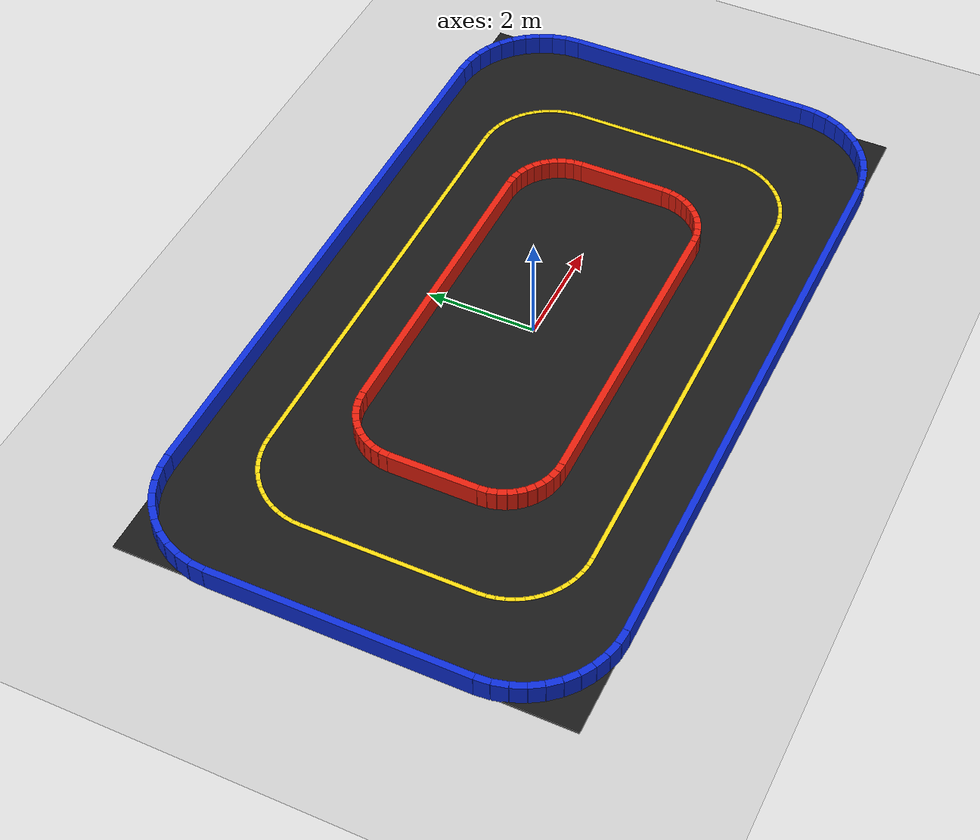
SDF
<sdf version="1.9">
 <world name="compact_race_track">
  <include><uri>model://ground_plane</uri></include>
  <include><uri>model://sun</uri></include>
  <model name="race_track">
   <static>true</static>
   <link name="track_floor">
    <collision name="collision"><geometry><box><size>14.0 8.0 0.05</size></box></geometry></collision>
    <visual name="visual">
     <geometry><box><size>14.0 8.0 0.05</size></box></geometry>
     <material><ambient>0.10 0.10 0.10 1</ambient><diffuse>0.10 0.10 0.10 1</diffuse></material>
    </visual>
   </link>
   <link name="outer_wall_000">
    <pose>0.0000 -4.0000 0.200 0 0 0.000000</pose>
    <collision name="collision"><geometry><box><size>10.6000 0.120 0.400</size></box></geometry></collision>
    <visual name="visual">
     <geometry><box><size>10.6000 0.120 0.400</size></box></geometry>
     <material><ambient>0.05 0.18 0.85 1</ambient><diffuse>0.05 0.18 0.85 1</diffuse></material>
    </visual>
   </link>
   <link name="outer_wall_001">
    <pose>5.4330 -3.9895 0.200 0 0 0.078540</pose>
    <collision name="collision"><geometry><box><size>0.2668 0.120 0.400</size></box></geometry></collision>
    <visual name="visual">
     <geometry><box><size>0.2668 0.120 0.400</size></box></geometry>
     <material><ambient>0.05 0.18 0.85 1</ambient><diffuse>0.05 0.18 0.85 1</diffuse></material>
    </visual>
   </link>
   <link name="outer_wall_002">
    <pose>5.6956 -3.9479 0.200 0 0 0.235619</pose>
    <collision name="collision"><geometry><box><size>0.2668 0.120 0.400</size></box></geometry></collision>
    <visual name="visual">
     <geometry><box><size>0.2668 0.120 0.400</size></box></geometry>
     <material><ambient>0.05 0.18 0.85 1</ambient><diffuse>0.05 0.18 0.85 1</diffuse></material>
    </visual>
   </link>
   <link name="outer_wall_003">
    <pose>5.9486 -3.8658 0.200 0 0 0.392699</pose>
    <collision name="collision"><geometry><box><size>0.2668 0.120 0.400</size></box></geometry></collision>
    <visual name="visual">
     <geometry><box><size>0.2668 0.120 0.400</size></box></geometry>
     <material><ambient>0.05 0.18 0.85 1</ambient><diffuse>0.05 0.18 0.85 1</diffuse></material>
    </visual>
   </link>
   <link name="outer_wall_004">
    <pose>6.1855 -3.7450 0.200 0 0 0.549779</pose>
    <collision name="collision"><geometry><box><size>0.2668 0.120 0.400</size></box></geometry></collision>
    <visual name="visual">
     <geometry><box><size>0.2668 0.120 0.400</size></box></geometry>
     <material><ambient>0.05 0.18 0.85 1</ambient><diffuse>0.05 0.18 0.85 1</diffuse></material>
    </visual>
   </link>
   <link name="outer_wall_005">
    <pose>6.4007 -3.5887 0.200 0 0 0.706858</pose>
    <collision name="collision"><geometry><box><size>0.2668 0.120 0.400</size></box></geometry></collision>
    <visual name="visual">
     <geometry><box><size>0.2668 0.120 0.400</size></box></geometry>
     <material><ambient>0.05 0.18 0.85 1</ambient><diffuse>0.05 0.18 0.85 1</diffuse></material>
    </visual>
   </link>
   <link name="outer_wall_006">
    <pose>6.5887 -3.4007 0.200 0 0 0.863938</pose>
    <collision name="collision"><geometry><box><size>0.2668 0.120 0.400</size></box></geometry></collision>
    <visual name="visual">
     <geometry><box><size>0.2668 0.120 0.400</size></box></geometry>
     <material><ambient>0.05 0.18 0.85 1</ambient><diffuse>0.05 0.18 0.85 1</diffuse></material>
    </visual>
   </link>
   <link name="outer_wall_007">
    <pose>6.7450 -3.1855 0.200 0 0 1.021018</pose>
    <collision name="collision"><geometry><box><size>0.2668 0.120 0.400</size></box></geometry></collision>
    <visual name="visual">
     <geometry><box><size>0.2668 0.120 0.400</size></box></geometry>
     <material><ambient>0.05 0.18 0.85 1</ambient><diffuse>0.05 0.18 0.85 1</diffuse></material>
    </visual>
   </link>
   <link name="outer_wall_008">
    <pose>6.8658 -2.9486 0.200 0 0 1.178097</pose>
    <collision name="collision"><geometry><box><size>0.2668 0.120 0.400</size></box></geometry></collision>
    <visual name="visual">
     <geometry><box><size>0.2668 0.120 0.400</size></box></geometry>
     <material><ambient>0.05 0.18 0.85 1</ambient><diffuse>0.05 0.18 0.85 1</diffuse></material>
    </visual>
   </link>
   <link name="outer_wall_009">
    <pose>6.9479 -2.6956 0.200 0 0 1.335177</pose>
    <collision name="collision"><geometry><box><size>0.2668 0.120 0.400</size></box></geometry></collision>
    <visual name="visual">
     <geometry><box><size>0.2668 0.120 0.400</size></box></geometry>
     <material><ambient>0.05 0.18 0.85 1</ambient><diffuse>0.05 0.18 0.85 1</diffuse></material>
    </visual>
   </link>
   <link name="outer_wall_010">
    <pose>6.9895 -2.4330 0.200 0 0 1.492257</pose>
    <collision name="collision"><geometry><box><size>0.2668 0.120 0.400</size></box></geometry></collision>
    <visual name="visual">
     <geometry><box><size>0.2668 0.120 0.400</size></box></geometry>
     <material><ambient>0.05 0.18 0.85 1</ambient><diffuse>0.05 0.18 0.85 1</diffuse></material>
    </visual>
   </link>
   <link name="outer_wall_011">
    <pose>7.0000 0.0000 0.200 0 0 1.570796</pose>
    <collision name="collision"><geometry><box><size>4.6000 0.120 0.400</size></box></geometry></collision>
    <visual name="visual">
     <geometry><box><size>4.6000 0.120 0.400</size></box></geometry>
     <material><ambient>0.05 0.18 0.85 1</ambient><diffuse>0.05 0.18 0.85 1</diffuse></material>
    </visual>
   </link>
   <link name="outer_wall_012">
    <pose>6.9895 2.4330 0.200 0 0 1.649336</pose>
    <collision name="collision"><geometry><box><size>0.2668 0.120 0.400</size></box></geometry></collision>
    <visual name="visual">
     <geometry><box><size>0.2668 0.120 0.400</size></box></geometry>
     <material><ambient>0.05 0.18 0.85 1</ambient><diffuse>0.05 0.18 0.85 1</diffuse></material>
    </visual>
   </link>
   <link name="outer_wall_013">
    <pose>6.9479 2.6956 0.200 0 0 1.806416</pose>
    <collision name="collision"><geometry><box><size>0.2668 0.120 0.400</size></box></geometry></collision>
    <visual name="visual">
     <geometry><box><size>0.2668 0.120 0.400</size></box></geometry>
     <material><ambient>0.05 0.18 0.85 1</ambient><diffuse>0.05 0.18 0.85 1</diffuse></material>
    </visual>
   </link>
   <link name="outer_wall_014">
    <pose>6.8658 2.9486 0.200 0 0 1.963495</pose>
    <collision name="collision"><geometry><box><size>0.2668 0.120 0.400</size></box></geometry></collision>
    <visual name="visual">
     <geometry><box><size>0.2668 0.120 0.400</size></box></geometry>
     <material><ambient>0.05 0.18 0.85 1</ambient><diffuse>0.05 0.18 0.85 1</diffuse></material>
    </visual>
   </link>
   <link name="outer_wall_015">
    <pose>6.7450 3.1855 0.200 0 0 2.120575</pose>
    <collision name="collision"><geometry><box><size>0.2668 0.120 0.400</size></box></geometry></collision>
    <visual name="visual">
     <geometry><box><size>0.2668 0.120 0.400</size></box></geometry>
     <material><ambient>0.05 0.18 0.85 1</ambient><diffuse>0.05 0.18 0.85 1</diffuse></material>
    </visual>
   </link>
   <link name="outer_wall_016">
    <pose>6.5887 3.4007 0.200 0 0 2.277655</pose>
    <collision name="collision"><geometry><box><size>0.2668 0.120 0.400</size></box></geometry></collision>
    <visual name="visual">
     <geometry><box><size>0.2668 0.120 0.400</size></box></geometry>
     <material><ambient>0.05 0.18 0.85 1</ambient><diffuse>0.05 0.18 0.85 1</diffuse></material>
    </visual>
   </link>
   <link name="outer_wall_017">
    <pose>6.4007 3.5887 0.200 0 0 2.434734</pose>
    <collision name="collision"><geometry><box><size>0.2668 0.120 0.400</size></box></geometry></collision>
    <visual name="visual">
     <geometry><box><size>0.2668 0.120 0.400</size></box></geometry>
     <material><ambient>0.05 0.18 0.85 1</ambient><diffuse>0.05 0.18 0.85 1</diffuse></material>
    </visual>
   </link>
   <link name="outer_wall_018">
    <pose>6.1855 3.7450 0.200 0 0 2.591814</pose>
    <collision name="collision"><geometry><box><size>0.2668 0.120 0.400</size></box></geometry></collision>
    <visual name="visual">
     <geometry><box><size>0.2668 0.120 0.400</size></box></geometry>
     <material><ambient>0.05 0.18 0.85 1</ambient><diffuse>0.05 0.18 0.85 1</diffuse></material>
    </visual>
   </link>
   <link name="outer_wall_019">
    <pose>5.9486 3.8658 0.200 0 0 2.748894</pose>
    <collision name="collision"><geometry><box><size>0.2668 0.120 0.400</size></box></geometry></collision>
    <visual name="visual">
     <geometry><box><size>0.2668 0.120 0.400</size></box></geometry>
     <material><ambient>0.05 0.18 0.85 1</ambient><diffuse>0.05 0.18 0.85 1</diffuse></material>
    </visual>
   </link>
   <link name="outer_wall_020">
    <pose>5.6956 3.9479 0.200 0 0 2.905973</pose>
    <collision name="collision"><geometry><box><size>0.2668 0.120 0.400</size></box></geometry></collision>
    <visual name="visual">
     <geometry><box><size>0.2668 0.120 0.400</size></box></geometry>
     <material><ambient>0.05 0.18 0.85 1</ambient><diffuse>0.05 0.18 0.85 1</diffuse></material>
    </visual>
   </link>
   <link name="outer_wall_021">
    <pose>5.4330 3.9895 0.200 0 0 3.063053</pose>
    <collision name="collision"><geometry><box><size>0.2668 0.120 0.400</size></box></geometry></collision>
    <visual name="visual">
     <geometry><box><size>0.2668 0.120 0.400</size></box></geometry>
     <material><ambient>0.05 0.18 0.85 1</ambient><diffuse>0.05 0.18 0.85 1</diffuse></material>
    </visual>
   </link>
   <link name="outer_wall_022">
    <pose>0.0000 4.0000 0.200 0 0 3.141593</pose>
    <collision name="collision"><geometry><box><size>10.6000 0.120 0.400</size></box></geometry></collision>
    <visual name="visual">
     <geometry><box><size>10.6000 0.120 0.400</size></box></geometry>
     <material><ambient>0.05 0.18 0.85 1</ambient><diffuse>0.05 0.18 0.85 1</diffuse></material>
    </visual>
   </link>
   <link name="outer_wall_023">
    <pose>-5.4330 3.9895 0.200 0 0 -3.063053</pose>
    <collision name="collision"><geometry><box><size>0.2668 0.120 0.400</size></box></geometry></collision>
    <visual name="visual">
     <geometry><box><size>0.2668 0.120 0.400</size></box></geometry>
     <material><ambient>0.05 0.18 0.85 1</ambient><diffuse>0.05 0.18 0.85 1</diffuse></material>
    </visual>
   </link>
   <link name="outer_wall_024">
    <pose>-5.6956 3.9479 0.200 0 0 -2.905973</pose>
    <collision name="collision"><geometry><box><size>0.2668 0.120 0.400</size></box></geometry></collision>
    <visual name="visual">
     <geometry><box><size>0.2668 0.120 0.400</size></box></geometry>
     <material><ambient>0.05 0.18 0.85 1</ambient><diffuse>0.05 0.18 0.85 1</diffuse></material>
    </visual>
   </link>
   <link name="outer_wall_025">
    <pose>-5.9486 3.8658 0.200 0 0 -2.748894</pose>
    <collision name="collision"><geometry><box><size>0.2668 0.120 0.400</size></box></geometry></collision>
    <visual name="visual">
     <geometry><box><size>0.2668 0.120 0.400</size></box></geometry>
     <material><ambient>0.05 0.18 0.85 1</ambient><diffuse>0.05 0.18 0.85 1</diffuse></material>
    </visual>
   </link>
   <link name="outer_wall_026">
    <pose>-6.1855 3.7450 0.200 0 0 -2.591814</pose>
    <collision name="collision"><geometry><box><size>0.2668 0.120 0.400</size></box></geometry></collision>
    <visual name="visual">
     <geometry><box><size>0.2668 0.120 0.400</size></box></geometry>
     <material><ambient>0.05 0.18 0.85 1</ambient><diffuse>0.05 0.18 0.85 1</diffuse></material>
    </visual>
   </link>
   <link name="outer_wall_027">
    <pose>-6.4007 3.5887 0.200 0 0 -2.434734</pose>
    <collision name="collision"><geometry><box><size>0.2668 0.120 0.400</size></box></geometry></collision>
    <visual name="visual">
     <geometry><box><size>0.2668 0.120 0.400</size></box></geometry>
     <material><ambient>0.05 0.18 0.85 1</ambient><diffuse>0.05 0.18 0.85 1</diffuse></material>
    </visual>
   </link>
   <link name="outer_wall_028">
    <pose>-6.5887 3.4007 0.200 0 0 -2.277655</pose>
    <collision name="collision"><geometry><box><size>0.2668 0.120 0.400</size></box></geometry></collision>
    <visual name="visual">
     <geometry><box><size>0.2668 0.120 0.400</size></box></geometry>
     <material><ambient>0.05 0.18 0.85 1</ambient><diffuse>0.05 0.18 0.85 1</diffuse></material>
    </visual>
   </link>
   <link name="outer_wall_029">
    <pose>-6.7450 3.1855 0.200 0 0 -2.120575</pose>
    <collision name="collision"><geometry><box><size>0.2668 0.120 0.400</size></box></geometry></collision>
    <visual name="visual">
     <geometry><box><size>0.2668 0.120 0.400</size></box></geometry>
     <material><ambient>0.05 0.18 0.85 1</ambient><diffuse>0.05 0.18 0.85 1</diffuse></material>
    </visual>
   </link>
   <link name="outer_wall_030">
    <pose>-6.8658 2.9486 0.200 0 0 -1.963495</pose>
    <collision name="collision"><geometry><box><size>0.2668 0.120 0.400</size></box></geometry></collision>
    <visual name="visual">
     <geometry><box><size>0.2668 0.120 0.400</size></box></geometry>
     <material><ambient>0.05 0.18 0.85 1</ambient><diffuse>0.05 0.18 0.85 1</diffuse></material>
    </visual>
   </link>
   <link name="outer_wall_031">
    <pose>-6.9479 2.6956 0.200 0 0 -1.806416</pose>
    <collision name="collision"><geometry><box><size>0.2668 0.120 0.400</size></box></geometry></collision>
    <visual name="visual">
     <geometry><box><size>0.2668 0.120 0.400</size></box></geometry>
     <material><ambient>0.05 0.18 0.85 1</ambient><diffuse>0.05 0.18 0.85 1</diffuse></material>
    </visual>
   </link>
   <link name="outer_wall_032">
    <pose>-6.9895 2.4330 0.200 0 0 -1.649336</pose>
    <collision name="collision"><geometry><box><size>0.2668 0.120 0.400</size></box></geometry></collision>
    <visual name="visual">
     <geometry><box><size>0.2668 0.120 0.400</size></box></geometry>
     <material><ambient>0.05 0.18 0.85 1</ambient><diffuse>0.05 0.18 0.85 1</diffuse></material>
    </visual>
   </link>
   <link name="outer_wall_033">
    <pose>-7.0000 0.0000 0.200 0 0 -1.570796</pose>
    <collision name="collision"><geometry><box><size>4.6000 0.120 0.400</size></box></geometry></collision>
    <visual name="visual">
     <geometry><box><size>4.6000 0.120 0.400</size></box></geometry>
     <material><ambient>0.05 0.18 0.85 1</ambient><diffuse>0.05 0.18 0.85 1</diffuse></material>
    </visual>
   </link>
   <link name="outer_wall_034">
    <pose>-6.9895 -2.4330 0.200 0 0 -1.492257</pose>
    <collision name="collision"><geometry><box><size>0.2668 0.120 0.400</size></box></geometry></collision>
    <visual name="visual">
     <geometry><box><size>0.2668 0.120 0.400</size></box></geometry>
     <material><ambient>0.05 0.18 0.85 1</ambient><diffuse>0.05 0.18 0.85 1</diffuse></material>
    </visual>
   </link>
   <link name="outer_wall_035">
    <pose>-6.9479 -2.6956 0.200 0 0 -1.335177</pose>
    <collision name="collision"><geometry><box><size>0.2668 0.120 0.400</size></box></geometry></collision>
    <visual name="visual">
     <geometry><box><size>0.2668 0.120 0.400</size></box></geometry>
     <material><ambient>0.05 0.18 0.85 1</ambient><diffuse>0.05 0.18 0.85 1</diffuse></material>
    </visual>
   </link>
   <link name="outer_wall_036">
    <pose>-6.8658 -2.9486 0.200 0 0 -1.178097</pose>
    <collision name="collision"><geometry><box><size>0.2668 0.120 0.400</size></box></geometry></collision>
    <visual name="visual">
     <geometry><box><size>0.2668 0.120 0.400</size></box></geometry>
     <material><ambient>0.05 0.18 0.85 1</ambient><diffuse>0.05 0.18 0.85 1</diffuse></material>
    </visual>
   </link>
   <link name="outer_wall_037">
    <pose>-6.7450 -3.1855 0.200 0 0 -1.021018</pose>
    <collision name="collision"><geometry><box><size>0.2668 0.120 0.400</size></box></geometry></collision>
    <visual name="visual">
     <geometry><box><size>0.2668 0.120 0.400</size></box></geometry>
     <material><ambient>0.05 0.18 0.85 1</ambient><diffuse>0.05 0.18 0.85 1</diffuse></material>
    </visual>
   </link>
   <link name="outer_wall_038">
    <pose>-6.5887 -3.4007 0.200 0 0 -0.863938</pose>
    <collision name="collision"><geometry><box><size>0.2668 0.120 0.400</size></box></geometry></collision>
    <visual name="visual">
     <geometry><box><size>0.2668 0.120 0.400</size></box></geometry>
     <material><ambient>0.05 0.18 0.85 1</ambient><diffuse>0.05 0.18 0.85 1</diffuse></material>
    </visual>
   </link>
   <link name="outer_wall_039">
    <pose>-6.4007 -3.5887 0.200 0 0 -0.706858</pose>
    <collision name="collision"><geometry><box><size>0.2668 0.120 0.400</size></box></geometry></collision>
    <visual name="visual">
     <geometry><box><size>0.2668 0.120 0.400</size></box></geometry>
     <material><ambient>0.05 0.18 0.85 1</ambient><diffuse>0.05 0.18 0.85 1</diffuse></material>
    </visual>
   </link>
   <link name="outer_wall_040">
    <pose>-6.1855 -3.7450 0.200 0 0 -0.549779</pose>
    <collision name="collision"><geometry><box><size>0.2668 0.120 0.400</size></box></geometry></collision>
    <visual name="visual">
     <geometry><box><size>0.2668 0.120 0.400</size></box></geometry>
     <material><ambient>0.05 0.18 0.85 1</ambient><diffuse>0.05 0.18 0.85 1</diffuse></material>
    </visual>
   </link>
   <link name="outer_wall_041">
    <pose>-5.9486 -3.8658 0.200 0 0 -0.392699</pose>
    <collision name="collision"><geometry><box><size>0.2668 0.120 0.400</size></box></geometry></collision>
    <visual name="visual">
     <geometry><box><size>0.2668 0.120 0.400</size></box></geometry>
     <material><ambient>0.05 0.18 0.85 1</ambient><diffuse>0.05 0.18 0.85 1</diffuse></material>
    </visual>
   </link>
   <link name="outer_wall_042">
    <pose>-5.6956 -3.9479 0.200 0 0 -0.235619</pose>
    <collision name="collision"><geometry><box><size>0.2668 0.120 0.400</size></box></geometry></collision>
    <visual name="visual">
     <geometry><box><size>0.2668 0.120 0.400</size></box></geometry>
     <material><ambient>0.05 0.18 0.85 1</ambient><diffuse>0.05 0.18 0.85 1</diffuse></material>
    </visual>
   </link>
   <link name="outer_wall_043">
    <pose>-5.4330 -3.9895 0.200 0 0 -0.078540</pose>
    <collision name="collision"><geometry><box><size>0.2668 0.120 0.400</size></box></geometry></collision>
    <visual name="visual">
     <geometry><box><size>0.2668 0.120 0.400</size></box></geometry>
     <material><ambient>0.05 0.18 0.85 1</ambient><diffuse>0.05 0.18 0.85 1</diffuse></material>
    </visual>
   </link>
   <link name="outer_wall_044">
    <pose>-5.3000 -4.0000 0.200 0 0 0.000000</pose>
    <collision name="collision"><geometry><box><size>0.0000 0.120 0.400</size></box></geometry></collision>
    <visual name="visual">
     <geometry><box><size>0.0000 0.120 0.400</size></box></geometry>
     <material><ambient>0.05 0.18 0.85 1</ambient><diffuse>0.05 0.18 0.85 1</diffuse></material>
    </visual>
   </link>
   <link name="inner_wall_000">
    <pose>0.0000 -1.8000 0.200 0 0 0.000000</pose>
    <collision name="collision"><geometry><box><size>5.6000 0.120 0.400</size></box></geometry></collision>
    <visual name="visual">
     <geometry><box><size>5.6000 0.120 0.400</size></box></geometry>
     <material><ambient>0.9 0.12 0.05 1</ambient><diffuse>0.9 0.12 0.05 1</diffuse></material>
    </visual>
   </link>
   <link name="inner_wall_001">
    <pose>2.8782 -1.7938 0.200 0 0 0.078540</pose>
    <collision name="collision"><geometry><box><size>0.1569 0.120 0.400</size></box></geometry></collision>
    <visual name="visual">
     <geometry><box><size>0.1569 0.120 0.400</size></box></geometry>
     <material><ambient>0.9 0.12 0.05 1</ambient><diffuse>0.9 0.12 0.05 1</diffuse></material>
    </visual>
   </link>
   <link name="inner_wall_002">
    <pose>3.0327 -1.7694 0.200 0 0 0.235619</pose>
    <collision name="collision"><geometry><box><size>0.1569 0.120 0.400</size></box></geometry></collision>
    <visual name="visual">
     <geometry><box><size>0.1569 0.120 0.400</size></box></geometry>
     <material><ambient>0.9 0.12 0.05 1</ambient><diffuse>0.9 0.12 0.05 1</diffuse></material>
    </visual>
   </link>
   <link name="inner_wall_003">
    <pose>3.1815 -1.7210 0.200 0 0 0.392699</pose>
    <collision name="collision"><geometry><box><size>0.1569 0.120 0.400</size></box></geometry></collision>
    <visual name="visual">
     <geometry><box><size>0.1569 0.120 0.400</size></box></geometry>
     <material><ambient>0.9 0.12 0.05 1</ambient><diffuse>0.9 0.12 0.05 1</diffuse></material>
    </visual>
   </link>
   <link name="inner_wall_004">
    <pose>3.3209 -1.6500 0.200 0 0 0.549779</pose>
    <collision name="collision"><geometry><box><size>0.1569 0.120 0.400</size></box></geometry></collision>
    <visual name="visual">
     <geometry><box><size>0.1569 0.120 0.400</size></box></geometry>
     <material><ambient>0.9 0.12 0.05 1</ambient><diffuse>0.9 0.12 0.05 1</diffuse></material>
    </visual>
   </link>
   <link name="inner_wall_005">
    <pose>3.4474 -1.5581 0.200 0 0 0.706858</pose>
    <collision name="collision"><geometry><box><size>0.1569 0.120 0.400</size></box></geometry></collision>
    <visual name="visual">
     <geometry><box><size>0.1569 0.120 0.400</size></box></geometry>
     <material><ambient>0.9 0.12 0.05 1</ambient><diffuse>0.9 0.12 0.05 1</diffuse></material>
    </visual>
   </link>
   <link name="inner_wall_006">
    <pose>3.5581 -1.4474 0.200 0 0 0.863938</pose>
    <collision name="collision"><geometry><box><size>0.1569 0.120 0.400</size></box></geometry></collision>
    <visual name="visual">
     <geometry><box><size>0.1569 0.120 0.400</size></box></geometry>
     <material><ambient>0.9 0.12 0.05 1</ambient><diffuse>0.9 0.12 0.05 1</diffuse></material>
    </visual>
   </link>
   <link name="inner_wall_007">
    <pose>3.6500 -1.3209 0.200 0 0 1.021018</pose>
    <collision name="collision"><geometry><box><size>0.1569 0.120 0.400</size></box></geometry></collision>
    <visual name="visual">
     <geometry><box><size>0.1569 0.120 0.400</size></box></geometry>
     <material><ambient>0.9 0.12 0.05 1</ambient><diffuse>0.9 0.12 0.05 1</diffuse></material>
    </visual>
   </link>
   <link name="inner_wall_008">
    <pose>3.7210 -1.1815 0.200 0 0 1.178097</pose>
    <collision name="collision"><geometry><box><size>0.1569 0.120 0.400</size></box></geometry></collision>
    <visual name="visual">
     <geometry><box><size>0.1569 0.120 0.400</size></box></geometry>
     <material><ambient>0.9 0.12 0.05 1</ambient><diffuse>0.9 0.12 0.05 1</diffuse></material>
    </visual>
   </link>
   <link name="inner_wall_009">
    <pose>3.7694 -1.0327 0.200 0 0 1.335177</pose>
    <collision name="collision"><geometry><box><size>0.1569 0.120 0.400</size></box></geometry></collision>
    <visual name="visual">
     <geometry><box><size>0.1569 0.120 0.400</size></box></geometry>
     <material><ambient>0.9 0.12 0.05 1</ambient><diffuse>0.9 0.12 0.05 1</diffuse></material>
    </visual>
   </link>
   <link name="inner_wall_010">
    <pose>3.7938 -0.8782 0.200 0 0 1.492257</pose>
    <collision name="collision"><geometry><box><size>0.1569 0.120 0.400</size></box></geometry></collision>
    <visual name="visual">
     <geometry><box><size>0.1569 0.120 0.400</size></box></geometry>
     <material><ambient>0.9 0.12 0.05 1</ambient><diffuse>0.9 0.12 0.05 1</diffuse></material>
    </visual>
   </link>
   <link name="inner_wall_011">
    <pose>3.8000 0.0000 0.200 0 0 1.570796</pose>
    <collision name="collision"><geometry><box><size>1.6000 0.120 0.400</size></box></geometry></collision>
    <visual name="visual">
     <geometry><box><size>1.6000 0.120 0.400</size></box></geometry>
     <material><ambient>0.9 0.12 0.05 1</ambient><diffuse>0.9 0.12 0.05 1</diffuse></material>
    </visual>
   </link>
   <link name="inner_wall_012">
    <pose>3.7938 0.8782 0.200 0 0 1.649336</pose>
    <collision name="collision"><geometry><box><size>0.1569 0.120 0.400</size></box></geometry></collision>
    <visual name="visual">
     <geometry><box><size>0.1569 0.120 0.400</size></box></geometry>
     <material><ambient>0.9 0.12 0.05 1</ambient><diffuse>0.9 0.12 0.05 1</diffuse></material>
    </visual>
   </link>
   <link name="inner_wall_013">
    <pose>3.7694 1.0327 0.200 0 0 1.806416</pose>
    <collision name="collision"><geometry><box><size>0.1569 0.120 0.400</size></box></geometry></collision>
    <visual name="visual">
     <geometry><box><size>0.1569 0.120 0.400</size></box></geometry>
     <material><ambient>0.9 0.12 0.05 1</ambient><diffuse>0.9 0.12 0.05 1</diffuse></material>
    </visual>
   </link>
   <link name="inner_wall_014">
    <pose>3.7210 1.1815 0.200 0 0 1.963495</pose>
    <collision name="collision"><geometry><box><size>0.1569 0.120 0.400</size></box></geometry></collision>
    <visual name="visual">
     <geometry><box><size>0.1569 0.120 0.400</size></box></geometry>
     <material><ambient>0.9 0.12 0.05 1</ambient><diffuse>0.9 0.12 0.05 1</diffuse></material>
    </visual>
   </link>
   <link name="inner_wall_015">
    <pose>3.6500 1.3209 0.200 0 0 2.120575</pose>
    <collision name="collision"><geometry><box><size>0.1569 0.120 0.400</size></box></geometry></collision>
    <visual name="visual">
     <geometry><box><size>0.1569 0.120 0.400</size></box></geometry>
     <material><ambient>0.9 0.12 0.05 1</ambient><diffuse>0.9 0.12 0.05 1</diffuse></material>
    </visual>
   </link>
   <link name="inner_wall_016">
    <pose>3.5581 1.4474 0.200 0 0 2.277655</pose>
    <collision name="collision"><geometry><box><size>0.1569 0.120 0.400</size></box></geometry></collision>
    <visual name="visual">
     <geometry><box><size>0.1569 0.120 0.400</size></box></geometry>
     <material><ambient>0.9 0.12 0.05 1</ambient><diffuse>0.9 0.12 0.05 1</diffuse></material>
    </visual>
   </link>
   <link name="inner_wall_017">
    <pose>3.4474 1.5581 0.200 0 0 2.434734</pose>
    <collision name="collision"><geometry><box><size>0.1569 0.120 0.400</size></box></geometry></collision>
    <visual name="visual">
     <geometry><box><size>0.1569 0.120 0.400</size></box></geometry>
     <material><ambient>0.9 0.12 0.05 1</ambient><diffuse>0.9 0.12 0.05 1</diffuse></material>
    </visual>
   </link>
   <link name="inner_wall_018">
    <pose>3.3209 1.6500 0.200 0 0 2.591814</pose>
    <collision name="collision"><geometry><box><size>0.1569 0.120 0.400</size></box></geometry></collision>
    <visual name="visual">
     <geometry><box><size>0.1569 0.120 0.400</size></box></geometry>
     <material><ambient>0.9 0.12 0.05 1</ambient><diffuse>0.9 0.12 0.05 1</diffuse></material>
    </visual>
   </link>
   <link name="inner_wall_019">
    <pose>3.1815 1.7210 0.200 0 0 2.748894</pose>
    <collision name="collision"><geometry><box><size>0.1569 0.120 0.400</size></box></geometry></collision>
    <visual name="visual">
     <geometry><box><size>0.1569 0.120 0.400</size></box></geometry>
     <material><ambient>0.9 0.12 0.05 1</ambient><diffuse>0.9 0.12 0.05 1</diffuse></material>
    </visual>
   </link>
   <link name="inner_wall_020">
    <pose>3.0327 1.7694 0.200 0 0 2.905973</pose>
    <collision name="collision"><geometry><box><size>0.1569 0.120 0.400</size></box></geometry></collision>
    <visual name="visual">
     <geometry><box><size>0.1569 0.120 0.400</size></box></geometry>
     <material><ambient>0.9 0.12 0.05 1</ambient><diffuse>0.9 0.12 0.05 1</diffuse></material>
    </visual>
   </link>
   <link name="inner_wall_021">
    <pose>2.8782 1.7938 0.200 0 0 3.063053</pose>
    <collision name="collision"><geometry><box><size>0.1569 0.120 0.400</size></box></geometry></collision>
    <visual name="visual">
     <geometry><box><size>0.1569 0.120 0.400</size></box></geometry>
     <material><ambient>0.9 0.12 0.05 1</ambient><diffuse>0.9 0.12 0.05 1</diffuse></material>
    </visual>
   </link>
   <link name="inner_wall_022">
    <pose>0.0000 1.8000 0.200 0 0 3.141593</pose>
    <collision name="collision"><geometry><box><size>5.6000 0.120 0.400</size></box></geometry></collision>
    <visual name="visual">
     <geometry><box><size>5.6000 0.120 0.400</size></box></geometry>
     <material><ambient>0.9 0.12 0.05 1</ambient><diffuse>0.9 0.12 0.05 1</diffuse></material>
    </visual>
   </link>
   <link name="inner_wall_023">
    <pose>-2.8782 1.7938 0.200 0 0 -3.063053</pose>
    <collision name="collision"><geometry><box><size>0.1569 0.120 0.400</size></box></geometry></collision>
    <visual name="visual">
     <geometry><box><size>0.1569 0.120 0.400</size></box></geometry>
     <material><ambient>0.9 0.12 0.05 1</ambient><diffuse>0.9 0.12 0.05 1</diffuse></material>
    </visual>
   </link>
   <link name="inner_wall_024">
    <pose>-3.0327 1.7694 0.200 0 0 -2.905973</pose>
    <collision name="collision"><geometry><box><size>0.1569 0.120 0.400</size></box></geometry></collision>
    <visual name="visual">
     <geometry><box><size>0.1569 0.120 0.400</size></box></geometry>
     <material><ambient>0.9 0.12 0.05 1</ambient><diffuse>0.9 0.12 0.05 1</diffuse></material>
    </visual>
   </link>
   <link name="inner_wall_025">
    <pose>-3.1815 1.7210 0.200 0 0 -2.748894</pose>
    <collision name="collision"><geometry><box><size>0.1569 0.120 0.400</size></box></geometry></collision>
    <visual name="visual">
     <geometry><box><size>0.1569 0.120 0.400</size></box></geometry>
     <material><ambient>0.9 0.12 0.05 1</ambient><diffuse>0.9 0.12 0.05 1</diffuse></material>
    </visual>
   </link>
   <link name="inner_wall_026">
    <pose>-3.3209 1.6500 0.200 0 0 -2.591814</pose>
    <collision name="collision"><geometry><box><size>0.1569 0.120 0.400</size></box></geometry></collision>
    <visual name="visual">
     <geometry><box><size>0.1569 0.120 0.400</size></box></geometry>
     <material><ambient>0.9 0.12 0.05 1</ambient><diffuse>0.9 0.12 0.05 1</diffuse></material>
    </visual>
   </link>
   <link name="inner_wall_027">
    <pose>-3.4474 1.5581 0.200 0 0 -2.434734</pose>
    <collision name="collision"><geometry><box><size>0.1569 0.120 0.400</size></box></geometry></collision>
    <visual name="visual">
     <geometry><box><size>0.1569 0.120 0.400</size></box></geometry>
     <material><ambient>0.9 0.12 0.05 1</ambient><diffuse>0.9 0.12 0.05 1</diffuse></material>
    </visual>
   </link>
   <link name="inner_wall_028">
    <pose>-3.5581 1.4474 0.200 0 0 -2.277655</pose>
    <collision name="collision"><geometry><box><size>0.1569 0.120 0.400</size></box></geometry></collision>
    <visual name="visual">
     <geometry><box><size>0.1569 0.120 0.400</size></box></geometry>
     <material><ambient>0.9 0.12 0.05 1</ambient><diffuse>0.9 0.12 0.05 1</diffuse></material>
    </visual>
   </link>
   <link name="inner_wall_029">
    <pose>-3.6500 1.3209 0.200 0 0 -2.120575</pose>
    <collision name="collision"><geometry><box><size>0.1569 0.120 0.400</size></box></geometry></collision>
    <visual name="visual">
     <geometry><box><size>0.1569 0.120 0.400</size></box></geometry>
     <material><ambient>0.9 0.12 0.05 1</ambient><diffuse>0.9 0.12 0.05 1</diffuse></material>
    </visual>
   </link>
   <link name="inner_wall_030">
    <pose>-3.7210 1.1815 0.200 0 0 -1.963495</pose>
    <collision name="collision"><geometry><box><size>0.1569 0.120 0.400</size></box></geometry></collision>
    <visual name="visual">
     <geometry><box><size>0.1569 0.120 0.400</size></box></geometry>
     <material><ambient>0.9 0.12 0.05 1</ambient><diffuse>0.9 0.12 0.05 1</diffuse></material>
    </visual>
   </link>
   <link name="inner_wall_031">
    <pose>-3.7694 1.0327 0.200 0 0 -1.806416</pose>
    <collision name="collision"><geometry><box><size>0.1569 0.120 0.400</size></box></geometry></collision>
    <visual name="visual">
     <geometry><box><size>0.1569 0.120 0.400</size></box></geometry>
     <material><ambient>0.9 0.12 0.05 1</ambient><diffuse>0.9 0.12 0.05 1</diffuse></material>
    </visual>
   </link>
   <link name="inner_wall_032">
    <pose>-3.7938 0.8782 0.200 0 0 -1.649336</pose>
    <collision name="collision"><geometry><box><size>0.1569 0.120 0.400</size></box></geometry></collision>
    <visual name="visual">
     <geometry><box><size>0.1569 0.120 0.400</size></box></geometry>
     <material><ambient>0.9 0.12 0.05 1</ambient><diffuse>0.9 0.12 0.05 1</diffuse></material>
    </visual>
   </link>
   <link name="inner_wall_033">
    <pose>-3.8000 0.0000 0.200 0 0 -1.570796</pose>
    <collision name="collision"><geometry><box><size>1.6000 0.120 0.400</size></box></geometry></collision>
    <visual name="visual">
     <geometry><box><size>1.6000 0.120 0.400</size></box></geometry>
     <material><ambient>0.9 0.12 0.05 1</ambient><diffuse>0.9 0.12 0.05 1</diffuse></material>
    </visual>
   </link>
   <link name="inner_wall_034">
    <pose>-3.7938 -0.8782 0.200 0 0 -1.492257</pose>
    <collision name="collision"><geometry><box><size>0.1569 0.120 0.400</size></box></geometry></collision>
    <visual name="visual">
     <geometry><box><size>0.1569 0.120 0.400</size></box></geometry>
     <material><ambient>0.9 0.12 0.05 1</ambient><diffuse>0.9 0.12 0.05 1</diffuse></material>
    </visual>
   </link>
   <link name="inner_wall_035">
    <pose>-3.7694 -1.0327 0.200 0 0 -1.335177</pose>
    <collision name="collision"><geometry><box><size>0.1569 0.120 0.400</size></box></geometry></collision>
    <visual name="visual">
     <geometry><box><size>0.1569 0.120 0.400</size></box></geometry>
     <material><ambient>0.9 0.12 0.05 1</ambient><diffuse>0.9 0.12 0.05 1</diffuse></material>
    </visual>
   </link>
   <link name="inner_wall_036">
    <pose>-3.7210 -1.1815 0.200 0 0 -1.178097</pose>
    <collision name="collision"><geometry><box><size>0.1569 0.120 0.400</size></box></geometry></collision>
    <visual name="visual">
     <geometry><box><size>0.1569 0.120 0.400</size></box></geometry>
     <material><ambient>0.9 0.12 0.05 1</ambient><diffuse>0.9 0.12 0.05 1</diffuse></material>
    </visual>
   </link>
   <link name="inner_wall_037">
    <pose>-3.6500 -1.3209 0.200 0 0 -1.021018</pose>
    <collision name="collision"><geometry><box><size>0.1569 0.120 0.400</size></box></geometry></collision>
    <visual name="visual">
     <geometry><box><size>0.1569 0.120 0.400</size></box></geometry>
     <material><ambient>0.9 0.12 0.05 1</ambient><diffuse>0.9 0.12 0.05 1</diffuse></material>
    </visual>
   </link>
   <link name="inner_wall_038">
    <pose>-3.5581 -1.4474 0.200 0 0 -0.863938</pose>
    <collision name="collision"><geometry><box><size>0.1569 0.120 0.400</size></box></geometry></collision>
    <visual name="visual">
     <geometry><box><size>0.1569 0.120 0.400</size></box></geometry>
     <material><ambient>0.9 0.12 0.05 1</ambient><diffuse>0.9 0.12 0.05 1</diffuse></material>
    </visual>
   </link>
   <link name="inner_wall_039">
    <pose>-3.4474 -1.5581 0.200 0 0 -0.706858</pose>
    <collision name="collision"><geometry><box><size>0.1569 0.120 0.400</size></box></geometry></collision>
    <visual name="visual">
     <geometry><box><size>0.1569 0.120 0.400</size></box></geometry>
     <material><ambient>0.9 0.12 0.05 1</ambient><diffuse>0.9 0.12 0.05 1</diffuse></material>
    </visual>
   </link>
   <link name="inner_wall_040">
    <pose>-3.3209 -1.6500 0.200 0 0 -0.549779</pose>
    <collision name="collision"><geometry><box><size>0.1569 0.120 0.400</size></box></geometry></collision>
    <visual name="visual">
     <geometry><box><size>0.1569 0.120 0.400</size></box></geometry>
     <material><ambient>0.9 0.12 0.05 1</ambient><diffuse>0.9 0.12 0.05 1</diffuse></material>
    </visual>
   </link>
   <link name="inner_wall_041">
    <pose>-3.1815 -1.7210 0.200 0 0 -0.392699</pose>
    <collision name="collision"><geometry><box><size>0.1569 0.120 0.400</size></box></geometry></collision>
    <visual name="visual">
     <geometry><box><size>0.1569 0.120 0.400</size></box></geometry>
     <material><ambient>0.9 0.12 0.05 1</ambient><diffuse>0.9 0.12 0.05 1</diffuse></material>
    </visual>
   </link>
   <link name="inner_wall_042">
    <pose>-3.0327 -1.7694 0.200 0 0 -0.235619</pose>
    <collision name="collision"><geometry><box><size>0.1569 0.120 0.400</size></box></geometry></collision>
    <visual name="visual">
     <geometry><box><size>0.1569 0.120 0.400</size></box></geometry>
     <material><ambient>0.9 0.12 0.05 1</ambient><diffuse>0.9 0.12 0.05 1</diffuse></material>
    </visual>
   </link>
   <link name="inner_wall_043">
    <pose>-2.8782 -1.7938 0.200 0 0 -0.078540</pose>
    <collision name="collision"><geometry><box><size>0.1569 0.120 0.400</size></box></geometry></collision>
    <visual name="visual">
     <geometry><box><size>0.1569 0.120 0.400</size></box></geometry>
     <material><ambient>0.9 0.12 0.05 1</ambient><diffuse>0.9 0.12 0.05 1</diffuse></material>
    </visual>
   </link>
   <link name="inner_wall_044">
    <pose>-2.8000 -1.8000 0.200 0 0 0.000000</pose>
    <collision name="collision"><geometry><box><size>0.0000 0.120 0.400</size></box></geometry></collision>
    <visual name="visual">
     <geometry><box><size>0.0000 0.120 0.400</size></box></geometry>
     <material><ambient>0.9 0.12 0.05 1</ambient><diffuse>0.9 0.12 0.05 1</diffuse></material>
    </visual>
   </link>
   <link name="centerline_link">
    <visual name="centerline_000">
     <pose>0.0000 -2.9000 0.031 0 0 0.000000</pose>
     <geometry><box><size>8.1000 0.075 0.008</size></box></geometry>
     <material>
      <ambient>1.0 0.85 0.05 1</ambient>
      <diffuse>1.0 0.85 0.05 1</diffuse>
      <emissive>0.50 0.42 0.025 1</emissive>
     </material>
    </visual>
    <visual name="centerline_001">
     <pose>4.1256 -2.8958 0.031 0 0 0.056100</pose>
     <geometry><box><size>0.1514 0.075 0.008</size></box></geometry>
     <material>
      <ambient>1.0 0.85 0.05 1</ambient>
      <diffuse>1.0 0.85 0.05 1</diffuse>
      <emissive>0.50 0.42 0.025 1</emissive>
     </material>
    </visual>
    <visual name="centerline_002">
     <pose>4.2758 -2.8788 0.031 0 0 0.168300</pose>
     <geometry><box><size>0.1514 0.075 0.008</size></box></geometry>
     <material>
      <ambient>1.0 0.85 0.05 1</ambient>
      <diffuse>1.0 0.85 0.05 1</diffuse>
      <emissive>0.50 0.42 0.025 1</emissive>
     </material>
    </visual>
    <visual name="centerline_003">
     <pose>4.4231 -2.8452 0.031 0 0 0.280499</pose>
     <geometry><box><size>0.1514 0.075 0.008</size></box></geometry>
     <material>
      <ambient>1.0 0.85 0.05 1</ambient>
      <diffuse>1.0 0.85 0.05 1</diffuse>
      <emissive>0.50 0.42 0.025 1</emissive>
     </material>
    </visual>
    <visual name="centerline_004">
     <pose>4.5658 -2.7953 0.031 0 0 0.392699</pose>
     <geometry><box><size>0.1514 0.075 0.008</size></box></geometry>
     <material>
      <ambient>1.0 0.85 0.05 1</ambient>
      <diffuse>1.0 0.85 0.05 1</diffuse>
      <emissive>0.50 0.42 0.025 1</emissive>
     </material>
    </visual>
    <visual name="centerline_005">
     <pose>4.7020 -2.7297 0.031 0 0 0.504899</pose>
     <geometry><box><size>0.1514 0.075 0.008</size></box></geometry>
     <material>
      <ambient>1.0 0.85 0.05 1</ambient>
      <diffuse>1.0 0.85 0.05 1</diffuse>
      <emissive>0.50 0.42 0.025 1</emissive>
     </material>
    </visual>
    <visual name="centerline_006">
     <pose>4.8300 -2.6493 0.031 0 0 0.617099</pose>
     <geometry><box><size>0.1514 0.075 0.008</size></box></geometry>
     <material>
      <ambient>1.0 0.85 0.05 1</ambient>
      <diffuse>1.0 0.85 0.05 1</diffuse>
      <emissive>0.50 0.42 0.025 1</emissive>
     </material>
    </visual>
    <visual name="centerline_007">
     <pose>4.9482 -2.5550 0.031 0 0 0.729298</pose>
     <geometry><box><size>0.1514 0.075 0.008</size></box></geometry>
     <material>
      <ambient>1.0 0.85 0.05 1</ambient>
      <diffuse>1.0 0.85 0.05 1</diffuse>
      <emissive>0.50 0.42 0.025 1</emissive>
     </material>
    </visual>
    <visual name="centerline_008">
     <pose>5.0550 -2.4482 0.031 0 0 0.841498</pose>
     <geometry><box><size>0.1514 0.075 0.008</size></box></geometry>
     <material>
      <ambient>1.0 0.85 0.05 1</ambient>
      <diffuse>1.0 0.85 0.05 1</diffuse>
      <emissive>0.50 0.42 0.025 1</emissive>
     </material>
    </visual>
    <visual name="centerline_009">
     <pose>5.1493 -2.3300 0.031 0 0 0.953698</pose>
     <geometry><box><size>0.1514 0.075 0.008</size></box></geometry>
     <material>
      <ambient>1.0 0.85 0.05 1</ambient>
      <diffuse>1.0 0.85 0.05 1</diffuse>
      <emissive>0.50 0.42 0.025 1</emissive>
     </material>
    </visual>
    <visual name="centerline_010">
     <pose>5.2297 -2.2020 0.031 0 0 1.065898</pose>
     <geometry><box><size>0.1514 0.075 0.008</size></box></geometry>
     <material>
      <ambient>1.0 0.85 0.05 1</ambient>
      <diffuse>1.0 0.85 0.05 1</diffuse>
      <emissive>0.50 0.42 0.025 1</emissive>
     </material>
    </visual>
    <visual name="centerline_011">
     <pose>5.2953 -2.0658 0.031 0 0 1.178097</pose>
     <geometry><box><size>0.1514 0.075 0.008</size></box></geometry>
     <material>
      <ambient>1.0 0.85 0.05 1</ambient>
      <diffuse>1.0 0.85 0.05 1</diffuse>
      <emissive>0.50 0.42 0.025 1</emissive>
     </material>
    </visual>
    <visual name="centerline_012">
     <pose>5.3452 -1.9231 0.031 0 0 1.290297</pose>
     <geometry><box><size>0.1514 0.075 0.008</size></box></geometry>
     <material>
      <ambient>1.0 0.85 0.05 1</ambient>
      <diffuse>1.0 0.85 0.05 1</diffuse>
      <emissive>0.50 0.42 0.025 1</emissive>
     </material>
    </visual>
    <visual name="centerline_013">
     <pose>5.3788 -1.7758 0.031 0 0 1.402497</pose>
     <geometry><box><size>0.1514 0.075 0.008</size></box></geometry>
     <material>
      <ambient>1.0 0.85 0.05 1</ambient>
      <diffuse>1.0 0.85 0.05 1</diffuse>
      <emissive>0.50 0.42 0.025 1</emissive>
     </material>
    </visual>
    <visual name="centerline_014">
     <pose>5.3958 -1.6256 0.031 0 0 1.514696</pose>
     <geometry><box><size>0.1514 0.075 0.008</size></box></geometry>
     <material>
      <ambient>1.0 0.85 0.05 1</ambient>
      <diffuse>1.0 0.85 0.05 1</diffuse>
      <emissive>0.50 0.42 0.025 1</emissive>
     </material>
    </visual>
    <visual name="centerline_015">
     <pose>5.4000 0.0000 0.031 0 0 1.570796</pose>
     <geometry><box><size>3.1000 0.075 0.008</size></box></geometry>
     <material>
      <ambient>1.0 0.85 0.05 1</ambient>
      <diffuse>1.0 0.85 0.05 1</diffuse>
      <emissive>0.50 0.42 0.025 1</emissive>
     </material>
    </visual>
    <visual name="centerline_016">
     <pose>5.3958 1.6256 0.031 0 0 1.626896</pose>
     <geometry><box><size>0.1514 0.075 0.008</size></box></geometry>
     <material>
      <ambient>1.0 0.85 0.05 1</ambient>
      <diffuse>1.0 0.85 0.05 1</diffuse>
      <emissive>0.50 0.42 0.025 1</emissive>
     </material>
    </visual>
    <visual name="centerline_017">
     <pose>5.3788 1.7758 0.031 0 0 1.739096</pose>
     <geometry><box><size>0.1514 0.075 0.008</size></box></geometry>
     <material>
      <ambient>1.0 0.85 0.05 1</ambient>
      <diffuse>1.0 0.85 0.05 1</diffuse>
      <emissive>0.50 0.42 0.025 1</emissive>
     </material>
    </visual>
    <visual name="centerline_018">
     <pose>5.3452 1.9231 0.031 0 0 1.851296</pose>
     <geometry><box><size>0.1514 0.075 0.008</size></box></geometry>
     <material>
      <ambient>1.0 0.85 0.05 1</ambient>
      <diffuse>1.0 0.85 0.05 1</diffuse>
      <emissive>0.50 0.42 0.025 1</emissive>
     </material>
    </visual>
    <visual name="centerline_019">
     <pose>5.2953 2.0658 0.031 0 0 1.963495</pose>
     <geometry><box><size>0.1514 0.075 0.008</size></box></geometry>
     <material>
      <ambient>1.0 0.85 0.05 1</ambient>
      <diffuse>1.0 0.85 0.05 1</diffuse>
      <emissive>0.50 0.42 0.025 1</emissive>
     </material>
    </visual>
    <visual name="centerline_020">
     <pose>5.2297 2.2020 0.031 0 0 2.075695</pose>
     <geometry><box><size>0.1514 0.075 0.008</size></box></geometry>
     <material>
      <ambient>1.0 0.85 0.05 1</ambient>
      <diffuse>1.0 0.85 0.05 1</diffuse>
      <emissive>0.50 0.42 0.025 1</emissive>
     </material>
    </visual>
    <visual name="centerline_021">
     <pose>5.1493 2.3300 0.031 0 0 2.187895</pose>
     <geometry><box><size>0.1514 0.075 0.008</size></box></geometry>
     <material>
      <ambient>1.0 0.85 0.05 1</ambient>
      <diffuse>1.0 0.85 0.05 1</diffuse>
      <emissive>0.50 0.42 0.025 1</emissive>
     </material>
    </visual>
    <visual name="centerline_022">
     <pose>5.0550 2.4482 0.031 0 0 2.300095</pose>
     <geometry><box><size>0.1514 0.075 0.008</size></box></geometry>
     <material>
      <ambient>1.0 0.85 0.05 1</ambient>
      <diffuse>1.0 0.85 0.05 1</diffuse>
      <emissive>0.50 0.42 0.025 1</emissive>
     </material>
    </visual>
    <visual name="centerline_023">
     <pose>4.9482 2.5550 0.031 0 0 2.412294</pose>
     <geometry><box><size>0.1514 0.075 0.008</size></box></geometry>
     <material>
      <ambient>1.0 0.85 0.05 1</ambient>
      <diffuse>1.0 0.85 0.05 1</diffuse>
      <emissive>0.50 0.42 0.025 1</emissive>
     </material>
    </visual>
    <visual name="centerline_024">
     <pose>4.8300 2.6493 0.031 0 0 2.524494</pose>
     <geometry><box><size>0.1514 0.075 0.008</size></box></geometry>
     <material>
      <ambient>1.0 0.85 0.05 1</ambient>
      <diffuse>1.0 0.85 0.05 1</diffuse>
      <emissive>0.50 0.42 0.025 1</emissive>
     </material>
    </visual>
    <visual name="centerline_025">
     <pose>4.7020 2.7297 0.031 0 0 2.636694</pose>
     <geometry><box><size>0.1514 0.075 0.008</size></box></geometry>
     <material>
      <ambient>1.0 0.85 0.05 1</ambient>
      <diffuse>1.0 0.85 0.05 1</diffuse>
      <emissive>0.50 0.42 0.025 1</emissive>
     </material>
    </visual>
    <visual name="centerline_026">
     <pose>4.5658 2.7953 0.031 0 0 2.748894</pose>
     <geometry><box><size>0.1514 0.075 0.008</size></box></geometry>
     <material>
      <ambient>1.0 0.85 0.05 1</ambient>
      <diffuse>1.0 0.85 0.05 1</diffuse>
      <emissive>0.50 0.42 0.025 1</emissive>
     </material>
    </visual>
    <visual name="centerline_027">
     <pose>4.4231 2.8452 0.031 0 0 2.861093</pose>
     <geometry><box><size>0.1514 0.075 0.008</size></box></geometry>
     <material>
      <ambient>1.0 0.85 0.05 1</ambient>
      <diffuse>1.0 0.85 0.05 1</diffuse>
      <emissive>0.50 0.42 0.025 1</emissive>
     </material>
    </visual>
    <visual name="centerline_028">
     <pose>4.2758 2.8788 0.031 0 0 2.973293</pose>
     <geometry><box><size>0.1514 0.075 0.008</size></box></geometry>
     <material>
      <ambient>1.0 0.85 0.05 1</ambient>
      <diffuse>1.0 0.85 0.05 1</diffuse>
      <emissive>0.50 0.42 0.025 1</emissive>
     </material>
    </visual>
    <visual name="centerline_029">
     <pose>4.1256 2.8958 0.031 0 0 3.085493</pose>
     <geometry><box><size>0.1514 0.075 0.008</size></box></geometry>
     <material>
      <ambient>1.0 0.85 0.05 1</ambient>
      <diffuse>1.0 0.85 0.05 1</diffuse>
      <emissive>0.50 0.42 0.025 1</emissive>
     </material>
    </visual>
    <visual name="centerline_030">
     <pose>0.0000 2.9000 0.031 0 0 3.141593</pose>
     <geometry><box><size>8.1000 0.075 0.008</size></box></geometry>
     <material>
      <ambient>1.0 0.85 0.05 1</ambient>
      <diffuse>1.0 0.85 0.05 1</diffuse>
      <emissive>0.50 0.42 0.025 1</emissive>
     </material>
    </visual>
    <visual name="centerline_031">
     <pose>-4.1256 2.8958 0.031 0 0 -3.085493</pose>
     <geometry><box><size>0.1514 0.075 0.008</size></box></geometry>
     <material>
      <ambient>1.0 0.85 0.05 1</ambient>
      <diffuse>1.0 0.85 0.05 1</diffuse>
      <emissive>0.50 0.42 0.025 1</emissive>
     </material>
    </visual>
    <visual name="centerline_032">
     <pose>-4.2758 2.8788 0.031 0 0 -2.973293</pose>
     <geometry><box><size>0.1514 0.075 0.008</size></box></geometry>
     <material>
      <ambient>1.0 0.85 0.05 1</ambient>
      <diffuse>1.0 0.85 0.05 1</diffuse>
      <emissive>0.50 0.42 0.025 1</emissive>
     </material>
    </visual>
    <visual name="centerline_033">
     <pose>-4.4231 2.8452 0.031 0 0 -2.861093</pose>
     <geometry><box><size>0.1514 0.075 0.008</size></box></geometry>
     <material>
      <ambient>1.0 0.85 0.05 1</ambient>
      <diffuse>1.0 0.85 0.05 1</diffuse>
      <emissive>0.50 0.42 0.025 1</emissive>
     </material>
    </visual>
    <visual name="centerline_034">
     <pose>-4.5658 2.7953 0.031 0 0 -2.748894</pose>
     <geometry><box><size>0.1514 0.075 0.008</size></box></geometry>
     <material>
      <ambient>1.0 0.85 0.05 1</ambient>
      <diffuse>1.0 0.85 0.05 1</diffuse>
      <emissive>0.50 0.42 0.025 1</emissive>
     </material>
    </visual>
    <visual name="centerline_035">
     <pose>-4.7020 2.7297 0.031 0 0 -2.636694</pose>
     <geometry><box><size>0.1514 0.075 0.008</size></box></geometry>
     <material>
      <ambient>1.0 0.85 0.05 1</ambient>
      <diffuse>1.0 0.85 0.05 1</diffuse>
      <emissive>0.50 0.42 0.025 1</emissive>
     </material>
    </visual>
    <visual name="centerline_036">
     <pose>-4.8300 2.6493 0.031 0 0 -2.524494</pose>
     <geometry><box><size>0.1514 0.075 0.008</size></box></geometry>
     <material>
      <ambient>1.0 0.85 0.05 1</ambient>
      <diffuse>1.0 0.85 0.05 1</diffuse>
      <emissive>0.50 0.42 0.025 1</emissive>
     </material>
    </visual>
    <visual name="centerline_037">
     <pose>-4.9482 2.5550 0.031 0 0 -2.412294</pose>
     <geometry><box><size>0.1514 0.075 0.008</size></box></geometry>
     <material>
      <ambient>1.0 0.85 0.05 1</ambient>
      <diffuse>1.0 0.85 0.05 1</diffuse>
      <emissive>0.50 0.42 0.025 1</emissive>
     </material>
    </visual>
    <visual name="centerline_038">
     <pose>-5.0550 2.4482 0.031 0 0 -2.300095</pose>
     <geometry><box><size>0.1514 0.075 0.008</size></box></geometry>
     <material>
      <ambient>1.0 0.85 0.05 1</ambient>
      <diffuse>1.0 0.85 0.05 1</diffuse>
      <emissive>0.50 0.42 0.025 1</emissive>
     </material>
    </visual>
    <visual name="centerline_039">
     <pose>-5.1493 2.3300 0.031 0 0 -2.187895</pose>
     <geometry><box><size>0.1514 0.075 0.008</size></box></geometry>
     <material>
      <ambient>1.0 0.85 0.05 1</ambient>
      <diffuse>1.0 0.85 0.05 1</diffuse>
      <emissive>0.50 0.42 0.025 1</emissive>
     </material>
    </visual>
    <visual name="centerline_040">
     <pose>-5.2297 2.2020 0.031 0 0 -2.075695</pose>
     <geometry><box><size>0.1514 0.075 0.008</size></box></geometry>
     <material>
      <ambient>1.0 0.85 0.05 1</ambient>
      <diffuse>1.0 0.85 0.05 1</diffuse>
      <emissive>0.50 0.42 0.025 1</emissive>
     </material>
    </visual>
    <visual name="centerline_041">
     <pose>-5.2953 2.0658 0.031 0 0 -1.963495</pose>
     <geometry><box><size>0.1514 0.075 0.008</size></box></geometry>
     <material>
      <ambient>1.0 0.85 0.05 1</ambient>
      <diffuse>1.0 0.85 0.05 1</diffuse>
      <emissive>0.50 0.42 0.025 1</emissive>
     </material>
    </visual>
    <visual name="centerline_042">
     <pose>-5.3452 1.9231 0.031 0 0 -1.851296</pose>
     <geometry><box><size>0.1514 0.075 0.008</size></box></geometry>
     <material>
      <ambient>1.0 0.85 0.05 1</ambient>
      <diffuse>1.0 0.85 0.05 1</diffuse>
      <emissive>0.50 0.42 0.025 1</emissive>
     </material>
    </visual>
    <visual name="centerline_043">
     <pose>-5.3788 1.7758 0.031 0 0 -1.739096</pose>
     <geometry><box><size>0.1514 0.075 0.008</size></box></geometry>
     <material>
      <ambient>1.0 0.85 0.05 1</ambient>
      <diffuse>1.0 0.85 0.05 1</diffuse>
      <emissive>0.50 0.42 0.025 1</emissive>
     </material>
    </visual>
    <visual name="centerline_044">
     <pose>-5.3958 1.6256 0.031 0 0 -1.626896</pose>
     <geometry><box><size>0.1514 0.075 0.008</size></box></geometry>
     <material>
      <ambient>1.0 0.85 0.05 1</ambient>
      <diffuse>1.0 0.85 0.05 1</diffuse>
      <emissive>0.50 0.42 0.025 1</emissive>
     </material>
    </visual>
    <visual name="centerline_045">
     <pose>-5.4000 0.0000 0.031 0 0 -1.570796</pose>
     <geometry><box><size>3.1000 0.075 0.008</size></box></geometry>
     <material>
      <ambient>1.0 0.85 0.05 1</ambient>
      <diffuse>1.0 0.85 0.05 1</diffuse>
      <emissive>0.50 0.42 0.025 1</emissive>
     </material>
    </visual>
    <visual name="centerline_046">
     <pose>-5.3958 -1.6256 0.031 0 0 -1.514696</pose>
     <geometry><box><size>0.1514 0.075 0.008</size></box></geometry>
     <material>
      <ambient>1.0 0.85 0.05 1</ambient>
      <diffuse>1.0 0.85 0.05 1</diffuse>
      <emissive>0.50 0.42 0.025 1</emissive>
     </material>
    </visual>
    <visual name="centerline_047">
     <pose>-5.3788 -1.7758 0.031 0 0 -1.402497</pose>
     <geometry><box><size>0.1514 0.075 0.008</size></box></geometry>
     <material>
      <ambient>1.0 0.85 0.05 1</ambient>
      <diffuse>1.0 0.85 0.05 1</diffuse>
      <emissive>0.50 0.42 0.025 1</emissive>
     </material>
    </visual>
    <visual name="centerline_048">
     <pose>-5.3452 -1.9231 0.031 0 0 -1.290297</pose>
     <geometry><box><size>0.1514 0.075 0.008</size></box></geometry>
     <material>
      <ambient>1.0 0.85 0.05 1</ambient>
      <diffuse>1.0 0.85 0.05 1</diffuse>
      <emissive>0.50 0.42 0.025 1</emissive>
     </material>
    </visual>
    <visual name="centerline_049">
     <pose>-5.2953 -2.0658 0.031 0 0 -1.178097</pose>
     <geometry><box><size>0.1514 0.075 0.008</size></box></geometry>
     <material>
      <ambient>1.0 0.85 0.05 1</ambient>
      <diffuse>1.0 0.85 0.05 1</diffuse>
      <emissive>0.50 0.42 0.025 1</emissive>
     </material>
    </visual>
    <visual name="centerline_050">
     <pose>-5.2297 -2.2020 0.031 0 0 -1.065898</pose>
     <geometry><box><size>0.1514 0.075 0.008</size></box></geometry>
     <material>
      <ambient>1.0 0.85 0.05 1</ambient>
      <diffuse>1.0 0.85 0.05 1</diffuse>
      <emissive>0.50 0.42 0.025 1</emissive>
     </material>
    </visual>
    <visual name="centerline_051">
     <pose>-5.1493 -2.3300 0.031 0 0 -0.953698</pose>
     <geometry><box><size>0.1514 0.075 0.008</size></box></geometry>
     <material>
      <ambient>1.0 0.85 0.05 1</ambient>
      <diffuse>1.0 0.85 0.05 1</diffuse>
      <emissive>0.50 0.42 0.025 1</emissive>
     </material>
    </visual>
    <visual name="centerline_052">
     <pose>-5.0550 -2.4482 0.031 0 0 -0.841498</pose>
     <geometry><box><size>0.1514 0.075 0.008</size></box></geometry>
     <material>
      <ambient>1.0 0.85 0.05 1</ambient>
      <diffuse>1.0 0.85 0.05 1</diffuse>
      <emissive>0.50 0.42 0.025 1</emissive>
     </material>
    </visual>
    <visual name="centerline_053">
     <pose>-4.9482 -2.5550 0.031 0 0 -0.729298</pose>
     <geometry><box><size>0.1514 0.075 0.008</size></box></geometry>
     <material>
      <ambient>1.0 0.85 0.05 1</ambient>
      <diffuse>1.0 0.85 0.05 1</diffuse>
      <emissive>0.50 0.42 0.025 1</emissive>
     </material>
    </visual>
    <visual name="centerline_054">
     <pose>-4.8300 -2.6493 0.031 0 0 -0.617099</pose>
     <geometry><box><size>0.1514 0.075 0.008</size></box></geometry>
     <material>
      <ambient>1.0 0.85 0.05 1</ambient>
      <diffuse>1.0 0.85 0.05 1</diffuse>
      <emissive>0.50 0.42 0.025 1</emissive>
     </material>
    </visual>
    <visual name="centerline_055">
     <pose>-4.7020 -2.7297 0.031 0 0 -0.504899</pose>
     <geometry><box><size>0.1514 0.075 0.008</size></box></geometry>
     <material>
      <ambient>1.0 0.85 0.05 1</ambient>
      <diffuse>1.0 0.85 0.05 1</diffuse>
      <emissive>0.50 0.42 0.025 1</emissive>
     </material>
    </visual>
    <visual name="centerline_056">
     <pose>-4.5658 -2.7953 0.031 0 0 -0.392699</pose>
     <geometry><box><size>0.1514 0.075 0.008</size></box></geometry>
     <material>
      <ambient>1.0 0.85 0.05 1</ambient>
      <diffuse>1.0 0.85 0.05 1</diffuse>
      <emissive>0.50 0.42 0.025 1</emissive>
     </material>
    </visual>
    <visual name="centerline_057">
     <pose>-4.4231 -2.8452 0.031 0 0 -0.280499</pose>
     <geometry><box><size>0.1514 0.075 0.008</size></box></geometry>
     <material>
      <ambient>1.0 0.85 0.05 1</ambient>
      <diffuse>1.0 0.85 0.05 1</diffuse>
      <emissive>0.50 0.42 0.025 1</emissive>
     </material>
    </visual>
    <visual name="centerline_058">
     <pose>-4.2758 -2.8788 0.031 0 0 -0.168300</pose>
     <geometry><box><size>0.1514 0.075 0.008</size></box></geometry>
     <material>
      <ambient>1.0 0.85 0.05 1</ambient>
      <diffuse>1.0 0.85 0.05 1</diffuse>
      <emissive>0.50 0.42 0.025 1</emissive>
     </material>
    </visual>
    <visual name="centerline_059">
     <pose>-4.1256 -2.8958 0.031 0 0 -0.056100</pose>
     <geometry><box><size>0.1514 0.075 0.008</size></box></geometry>
     <material>
      <ambient>1.0 0.85 0.05 1</ambient>
      <diffuse>1.0 0.85 0.05 1</diffuse>
      <emissive>0.50 0.42 0.025 1</emissive>
     </material>
    </visual>
    <visual name="centerline_060">
     <pose>-4.0500 -2.9000 0.031 0 0 0.000000</pose>
     <geometry><box><size>0.0000 0.075 0.008</size></box></geometry>
     <material>
      <ambient>1.0 0.85 0.05 1</ambient>
      <diffuse>1.0 0.85 0.05 1</diffuse>
      <emissive>0.50 0.42 0.025 1</emissive>
     </material>
    </visual>
   </link>
  </model>
 </world>
</sdf>
